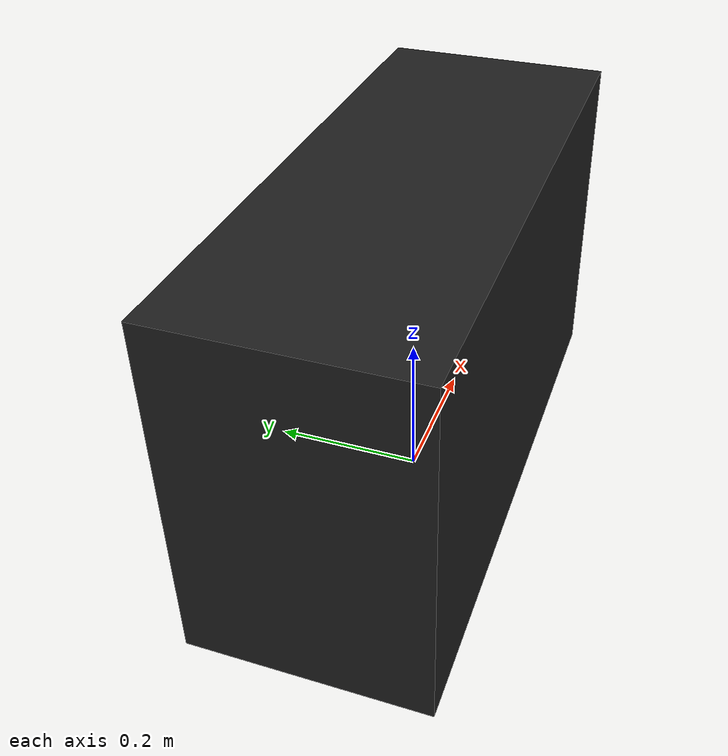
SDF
<?xml version="1.0" ?>
<sdf version="1.7">
  <model name="everblock_small_black">
    <static>true</static>
    <link name="block">
      <pose>0 0 0.2286 0 0 0</pose>
      <collision name="collision">
        <geometry>
          <box>
            <size>0.762 0.3048 0.4572</size>
          </box>
        </geometry>
      </collision>
      <visual name="visual">
        <geometry>
          <mesh>
            <uri>model://everblock_tiny_black/meshes/block.dae</uri>
            <scale>0.762 0.3048 0.4572</scale>
          </mesh>
	  	</geometry>
        <material>
          <script>
            <uri>model://everblock_tiny_black/materials/scripts</uri>
            <uri>model://everblock_tiny_black/materials/textures</uri>
            <name>BlockTinyBlack</name>
          </script>
        </material>
      </visual>
    </link>
  </model>
</sdf>
